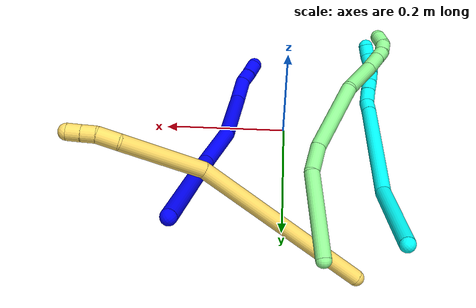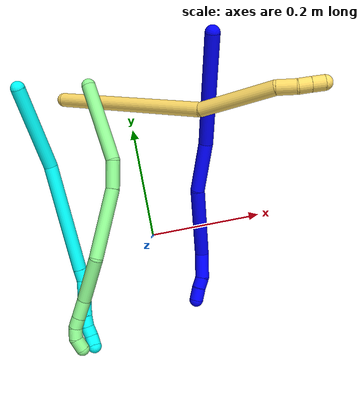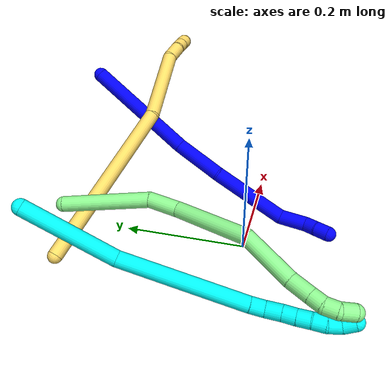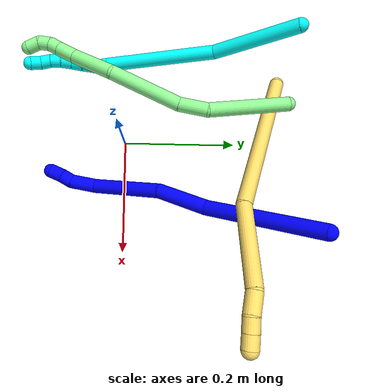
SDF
<sdf version="1.7">
 <world name="default">
  <model name="1">
   <static>0</static>
   <link name="1">
    <collision name="collision-cylinder-e_1_1_4">
     <pose>-0.030157 -0.092125 0.004974 1.51686 -0.315931 -0.299588</pose>
     <geometry><cylinder><radius>0.0125</radius><length>0.194125</length></cylinder></geometry>
     <surface>
      <friction><ode><mu>1.16</mu><mu2>1.16</mu2><slip1>0</slip1><slip2>0</slip2></ode></friction>
      <contact><ode><kp>1e+06</kp><kd>1</kd><max_vel>0</max_vel><min_depth>0.001</min_depth></ode></contact>
     </surface>
    </collision>
    <visual name="visual-cylinder-e_1_1_4">
     <pose>-0.030157 -0.092125 0.004974 1.51686 -0.315931 -0.299588</pose>
     <geometry><cylinder><radius>0.0125</radius><length>0.194125</length></cylinder></geometry>
     <material><ambient>0 0 1 1</ambient></material>
    </visual>
    <collision name="collision-cylinder-e_2_4_5">
     <pose>-0.083019 -0.220854 0.014388 1.45007 -0.551906 -0.49165</pose>
     <geometry><cylinder><radius>0.0125</radius><length>0.086605</length></cylinder></geometry>
     <surface>
      <friction><ode><mu>1.16</mu><mu2>1.16</mu2><slip1>0</slip1><slip2>0</slip2></ode></friction>
      <contact><ode><kp>1e+06</kp><kd>1</kd><max_vel>0</max_vel><min_depth>0.001</min_depth></ode></contact>
     </surface>
    </collision>
    <visual name="visual-cylinder-e_2_4_5">
     <pose>-0.083019 -0.220854 0.014388 1.45007 -0.551906 -0.49165</pose>
     <geometry><cylinder><radius>0.0125</radius><length>0.086605</length></cylinder></geometry>
     <material><ambient>0 0 1 1</ambient></material>
    </visual>
    <collision name="collision-cylinder-e_3_5_6">
     <pose>-0.124885 -0.318672 0.030797 1.37772 -0.298066 -0.24602</pose>
     <geometry><cylinder><radius>0.0125</radius><length>0.130499</length></cylinder></geometry>
     <surface>
      <friction><ode><mu>1.16</mu><mu2>1.16</mu2><slip1>0</slip1><slip2>0</slip2></ode></friction>
      <contact><ode><kp>1e+06</kp><kd>1</kd><max_vel>0</max_vel><min_depth>0.001</min_depth></ode></contact>
     </surface>
    </collision>
    <visual name="visual-cylinder-e_3_5_6">
     <pose>-0.124885 -0.318672 0.030797 1.37772 -0.298066 -0.24602</pose>
     <geometry><cylinder><radius>0.0125</radius><length>0.130499</length></cylinder></geometry>
     <material><ambient>0 0 1 1</ambient></material>
    </visual>
    <collision name="collision-cylinder-e_4_6_7">
     <pose>-0.157364 -0.395648 0.052493 1.01781 -0.623311 -0.355678</pose>
     <geometry><cylinder><radius>0.0125</radius><length>0.045627</length></cylinder></geometry>
     <surface>
      <friction><ode><mu>1.16</mu><mu2>1.16</mu2><slip1>0</slip1><slip2>0</slip2></ode></friction>
      <contact><ode><kp>1e+06</kp><kd>1</kd><max_vel>0</max_vel><min_depth>0.001</min_depth></ode></contact>
     </surface>
    </collision>
    <visual name="visual-cylinder-e_4_6_7">
     <pose>-0.157364 -0.395648 0.052493 1.01781 -0.623311 -0.355678</pose>
     <geometry><cylinder><radius>0.0125</radius><length>0.045627</length></cylinder></geometry>
     <material><ambient>0 0 1 1</ambient></material>
    </visual>
    <collision name="collision-cylinder-e_5_7_8">
     <pose>-0.178786 -0.416891 0.064342 1.20171 -0.943564 -0.672804</pose>
     <geometry><cylinder><radius>0.0125</radius><length>0.020022</length></cylinder></geometry>
     <surface>
      <friction><ode><mu>1.16</mu><mu2>1.16</mu2><slip1>0</slip1><slip2>0</slip2></ode></friction>
      <contact><ode><kp>1e+06</kp><kd>1</kd><max_vel>0</max_vel><min_depth>0.001</min_depth></ode></contact>
     </surface>
    </collision>
    <visual name="visual-cylinder-e_5_7_8">
     <pose>-0.178786 -0.416891 0.064342 1.20171 -0.943564 -0.672804</pose>
     <geometry><cylinder><radius>0.0125</radius><length>0.020022</length></cylinder></geometry>
     <material><ambient>0 0 1 1</ambient></material>
    </visual>
    <collision name="collision-cylinder-e_6_8_2">
     <pose>-0.195271 -0.429743 0.069477 1.18253 -0.810739 -0.561043</pose>
     <geometry><cylinder><radius>0.0125</radius><length>0.023122</length></cylinder></geometry>
     <surface>
      <friction><ode><mu>1.16</mu><mu2>1.16</mu2><slip1>0</slip1><slip2>0</slip2></ode></friction>
      <contact><ode><kp>1e+06</kp><kd>1</kd><max_vel>0</max_vel><min_depth>0.001</min_depth></ode></contact>
     </surface>
    </collision>
    <visual name="visual-cylinder-e_6_8_2">
     <pose>-0.195271 -0.429743 0.069477 1.18253 -0.810739 -0.561043</pose>
     <geometry><cylinder><radius>0.0125</radius><length>0.023122</length></cylinder></geometry>
     <material><ambient>0 0 1 1</ambient></material>
    </visual>
    <collision name="collision-sphere-2">
     <pose>-0.20365 -0.437115 0.072493 0 -0 0</pose>
     <geometry><sphere><radius>0.0125</radius></sphere></geometry>
     <surface>
      <friction><ode><mu>1.16</mu><mu2>1.16</mu2><slip1>0</slip1><slip2>0</slip2></ode></friction>
      <contact><ode><kp>1e+06</kp><kd>1</kd><max_vel>0</max_vel><min_depth>0.001</min_depth></ode></contact>
     </surface>
    </collision>
    <visual name="visual-sphere-2">
     <pose>-0.20365 -0.437115 0.072493 0 -0 0</pose>
     <geometry><sphere><radius>0.0125</radius></sphere></geometry>
     <material><ambient>0 0 1 1</ambient></material>
    </visual>
    <collision name="collision-sphere-4">
     <pose>-0.060315 -0.184249 0.009947 0 -0 0</pose>
     <geometry><sphere><radius>0.0125</radius></sphere></geometry>
     <surface>
      <friction><ode><mu>1.16</mu><mu2>1.16</mu2><slip1>0</slip1><slip2>0</slip2></ode></friction>
      <contact><ode><kp>1e+06</kp><kd>1</kd><max_vel>0</max_vel><min_depth>0.001</min_depth></ode></contact>
     </surface>
    </collision>
    <visual name="visual-sphere-4">
     <pose>-0.060315 -0.184249 0.009947 0 -0 0</pose>
     <geometry><sphere><radius>0.0125</radius></sphere></geometry>
     <material><ambient>0 0 1 1</ambient></material>
    </visual>
    <collision name="collision-sphere-1">
     <geometry><sphere><radius>0.0125</radius></sphere></geometry>
     <surface>
      <friction><ode><mu>1.16</mu><mu2>1.16</mu2><slip1>0</slip1><slip2>0</slip2></ode></friction>
      <contact><ode><kp>1e+06</kp><kd>1</kd><max_vel>0</max_vel><min_depth>0.001</min_depth></ode></contact>
     </surface>
    </collision>
    <visual name="visual-sphere-1">
     <geometry><sphere><radius>0.0125</radius></sphere></geometry>
     <material><ambient>0 0 1 1</ambient></material>
    </visual>
    <collision name="collision-sphere-8">
     <pose>-0.186891 -0.422371 0.066462 0 -0 0</pose>
     <geometry><sphere><radius>0.0125</radius></sphere></geometry>
     <surface>
      <friction><ode><mu>1.16</mu><mu2>1.16</mu2><slip1>0</slip1><slip2>0</slip2></ode></friction>
      <contact><ode><kp>1e+06</kp><kd>1</kd><max_vel>0</max_vel><min_depth>0.001</min_depth></ode></contact>
     </surface>
    </collision>
    <visual name="visual-sphere-8">
     <pose>-0.186891 -0.422371 0.066462 0 -0 0</pose>
     <geometry><sphere><radius>0.0125</radius></sphere></geometry>
     <material><ambient>0 0 1 1</ambient></material>
    </visual>
    <collision name="collision-sphere-5">
     <pose>-0.105723 -0.257459 0.018829 0 -0 0</pose>
     <geometry><sphere><radius>0.0125</radius></sphere></geometry>
     <surface>
      <friction><ode><mu>1.16</mu><mu2>1.16</mu2><slip1>0</slip1><slip2>0</slip2></ode></friction>
      <contact><ode><kp>1e+06</kp><kd>1</kd><max_vel>0</max_vel><min_depth>0.001</min_depth></ode></contact>
     </surface>
    </collision>
    <visual name="visual-sphere-5">
     <pose>-0.105723 -0.257459 0.018829 0 -0 0</pose>
     <geometry><sphere><radius>0.0125</radius></sphere></geometry>
     <material><ambient>0 0 1 1</ambient></material>
    </visual>
    <collision name="collision-sphere-6">
     <pose>-0.144047 -0.379886 0.042764 0 -0 0</pose>
     <geometry><sphere><radius>0.0125</radius></sphere></geometry>
     <surface>
      <friction><ode><mu>1.16</mu><mu2>1.16</mu2><slip1>0</slip1><slip2>0</slip2></ode></friction>
      <contact><ode><kp>1e+06</kp><kd>1</kd><max_vel>0</max_vel><min_depth>0.001</min_depth></ode></contact>
     </surface>
    </collision>
    <visual name="visual-sphere-6">
     <pose>-0.144047 -0.379886 0.042764 0 -0 0</pose>
     <geometry><sphere><radius>0.0125</radius></sphere></geometry>
     <material><ambient>0 0 1 1</ambient></material>
    </visual>
    <collision name="collision-sphere-7">
     <pose>-0.170681 -0.411411 0.062222 0 -0 0</pose>
     <geometry><sphere><radius>0.0125</radius></sphere></geometry>
     <surface>
      <friction><ode><mu>1.16</mu><mu2>1.16</mu2><slip1>0</slip1><slip2>0</slip2></ode></friction>
      <contact><ode><kp>1e+06</kp><kd>1</kd><max_vel>0</max_vel><min_depth>0.001</min_depth></ode></contact>
     </surface>
    </collision>
    <visual name="visual-sphere-7">
     <pose>-0.170681 -0.411411 0.062222 0 -0 0</pose>
     <geometry><sphere><radius>0.0125</radius></sphere></geometry>
     <material><ambient>0 0 1 1</ambient></material>
    </visual>
    <inertial>
     <pose>-0.089232 -0.229866 0.023041 0 -0 0</pose>
     <mass>0.5</mass>
     <inertia>
      <ixx>0.000529</ixx>
      <ixy>0</ixy>
      <ixz>0</ixz>
      <iyy>-0.000113</iyy>
      <iyz>0</iyz>
      <izz>0.001113</izz>
     </inertia>
    </inertial>
   </link>
   <pose>0.156693 0.29882 0.213049 0.932279 0.409623 0.540116</pose>
  </model>
  <model name="3">
   <static>0</static>
   <link name="3">
    <collision name="collision-cylinder-e_1_1_4">
     <pose>-0.013039 -0.074394 0.009941 1.43796 -0.172009 -0.15064</pose>
     <geometry><cylinder><radius>0.0125</radius><length>0.152358</length></cylinder></geometry>
     <surface>
      <friction><ode><mu>1.16</mu><mu2>1.16</mu2><slip1>0</slip1><slip2>0</slip2></ode></friction>
      <contact><ode><kp>1e+06</kp><kd>1</kd><max_vel>0</max_vel><min_depth>0.001</min_depth></ode></contact>
     </surface>
    </collision>
    <visual name="visual-cylinder-e_1_1_4">
     <pose>-0.013039 -0.074394 0.009941 1.43796 -0.172009 -0.15064</pose>
     <geometry><cylinder><radius>0.0125</radius><length>0.152358</length></cylinder></geometry>
     <material><ambient>0.003922 1 0.996078 1</ambient></material>
    </visual>
    <collision name="collision-cylinder-e_2_4_5">
     <pose>-0.017869 -0.247804 0.019027 1.57943 0.082715 0.083431</pose>
     <geometry><cylinder><radius>0.0125</radius><length>0.19872</length></cylinder></geometry>
     <surface>
      <friction><ode><mu>1.16</mu><mu2>1.16</mu2><slip1>0</slip1><slip2>0</slip2></ode></friction>
      <contact><ode><kp>1e+06</kp><kd>1</kd><max_vel>0</max_vel><min_depth>0.001</min_depth></ode></contact>
     </surface>
    </collision>
    <visual name="visual-cylinder-e_2_4_5">
     <pose>-0.017869 -0.247804 0.019027 1.57943 0.082715 0.083431</pose>
     <geometry><cylinder><radius>0.0125</radius><length>0.19872</length></cylinder></geometry>
     <material><ambient>0.003922 1 0.996078 1</ambient></material>
    </visual>
    <collision name="collision-cylinder-e_3_5_6">
     <pose>-0.008881 -0.358292 0.017376 1.64002 0.067639 0.072487</pose>
     <geometry><cylinder><radius>0.0125</radius><length>0.02305</length></cylinder></geometry>
     <surface>
      <friction><ode><mu>1.16</mu><mu2>1.16</mu2><slip1>0</slip1><slip2>0</slip2></ode></friction>
      <contact><ode><kp>1e+06</kp><kd>1</kd><max_vel>0</max_vel><min_depth>0.001</min_depth></ode></contact>
     </surface>
    </collision>
    <visual name="visual-cylinder-e_3_5_6">
     <pose>-0.008881 -0.358292 0.017376 1.64002 0.067639 0.072487</pose>
     <geometry><cylinder><radius>0.0125</radius><length>0.02305</length></cylinder></geometry>
     <material><ambient>0.003922 1 0.996078 1</ambient></material>
    </visual>
    <collision name="collision-cylinder-e_4_6_7">
     <pose>-0.003012 -0.381391 0.015361 1.67531 0.410532 0.454376</pose>
     <geometry><cylinder><radius>0.0125</radius><length>0.025503</length></cylinder></geometry>
     <surface>
      <friction><ode><mu>1.16</mu><mu2>1.16</mu2><slip1>0</slip1><slip2>0</slip2></ode></friction>
      <contact><ode><kp>1e+06</kp><kd>1</kd><max_vel>0</max_vel><min_depth>0.001</min_depth></ode></contact>
     </surface>
    </collision>
    <visual name="visual-cylinder-e_4_6_7">
     <pose>-0.003012 -0.381391 0.015361 1.67531 0.410532 0.454376</pose>
     <geometry><cylinder><radius>0.0125</radius><length>0.025503</length></cylinder></geometry>
     <material><ambient>0.003922 1 0.996078 1</ambient></material>
    </visual>
    <collision name="collision-cylinder-e_5_7_8">
     <pose>0.006246 -0.402176 0.013765 1.61186 0.426942 0.444272</pose>
     <geometry><cylinder><radius>0.0125</radius><length>0.020137</length></cylinder></geometry>
     <surface>
      <friction><ode><mu>1.16</mu><mu2>1.16</mu2><slip1>0</slip1><slip2>0</slip2></ode></friction>
      <contact><ode><kp>1e+06</kp><kd>1</kd><max_vel>0</max_vel><min_depth>0.001</min_depth></ode></contact>
     </surface>
    </collision>
    <visual name="visual-cylinder-e_5_7_8">
     <pose>0.006246 -0.402176 0.013765 1.61186 0.426942 0.444272</pose>
     <geometry><cylinder><radius>0.0125</radius><length>0.020137</length></cylinder></geometry>
     <material><ambient>0.003922 1 0.996078 1</ambient></material>
    </visual>
    <collision name="collision-cylinder-e_6_8_9">
     <pose>0.014511 -0.420523 0.012389 1.67917 0.417127 0.463362</pose>
     <geometry><cylinder><radius>0.0125</radius><length>0.02022</length></cylinder></geometry>
     <surface>
      <friction><ode><mu>1.16</mu><mu2>1.16</mu2><slip1>0</slip1><slip2>0</slip2></ode></friction>
      <contact><ode><kp>1e+06</kp><kd>1</kd><max_vel>0</max_vel><min_depth>0.001</min_depth></ode></contact>
     </surface>
    </collision>
    <visual name="visual-cylinder-e_6_8_9">
     <pose>0.014511 -0.420523 0.012389 1.67917 0.417127 0.463362</pose>
     <geometry><cylinder><radius>0.0125</radius><length>0.02022</length></cylinder></geometry>
     <material><ambient>0.003922 1 0.996078 1</ambient></material>
    </visual>
    <collision name="collision-cylinder-e_7_9_10">
     <pose>0.021239 -0.439334 0.010645 1.64802 0.26618 0.287289</pose>
     <geometry><cylinder><radius>0.0125</radius><length>0.020007</length></cylinder></geometry>
     <surface>
      <friction><ode><mu>1.16</mu><mu2>1.16</mu2><slip1>0</slip1><slip2>0</slip2></ode></friction>
      <contact><ode><kp>1e+06</kp><kd>1</kd><max_vel>0</max_vel><min_depth>0.001</min_depth></ode></contact>
     </surface>
    </collision>
    <visual name="visual-cylinder-e_7_9_10">
     <pose>0.021239 -0.439334 0.010645 1.64802 0.26618 0.287289</pose>
     <geometry><cylinder><radius>0.0125</radius><length>0.020007</length></cylinder></geometry>
     <material><ambient>0.003922 1 0.996078 1</ambient></material>
    </visual>
    <collision name="collision-cylinder-e_8_10_11">
     <pose>0.025179 -0.458449 0.007039 1.86352 0.131274 0.176464</pose>
     <geometry><cylinder><radius>0.0125</radius><length>0.02</length></cylinder></geometry>
     <surface>
      <friction><ode><mu>1.16</mu><mu2>1.16</mu2><slip1>0</slip1><slip2>0</slip2></ode></friction>
      <contact><ode><kp>1e+06</kp><kd>1</kd><max_vel>0</max_vel><min_depth>0.001</min_depth></ode></contact>
     </surface>
    </collision>
    <visual name="visual-cylinder-e_8_10_11">
     <pose>0.025179 -0.458449 0.007039 1.86352 0.131274 0.176464</pose>
     <geometry><cylinder><radius>0.0125</radius><length>0.02</length></cylinder></geometry>
     <material><ambient>0.003922 1 0.996078 1</ambient></material>
    </visual>
    <collision name="collision-cylinder-e_9_11_2">
     <pose>0.030291 -0.475826 -0.000659 2.12118 0.390065 0.678674</pose>
     <geometry><cylinder><radius>0.0125</radius><length>0.020003</length></cylinder></geometry>
     <surface>
      <friction><ode><mu>1.16</mu><mu2>1.16</mu2><slip1>0</slip1><slip2>0</slip2></ode></friction>
      <contact><ode><kp>1e+06</kp><kd>1</kd><max_vel>0</max_vel><min_depth>0.001</min_depth></ode></contact>
     </surface>
    </collision>
    <visual name="visual-cylinder-e_9_11_2">
     <pose>0.030291 -0.475826 -0.000659 2.12118 0.390065 0.678674</pose>
     <geometry><cylinder><radius>0.0125</radius><length>0.020003</length></cylinder></geometry>
     <material><ambient>0.003922 1 0.996078 1</ambient></material>
    </visual>
    <collision name="collision-sphere-2">
     <pose>0.034094 -0.48371 -0.005498 0 -0 0</pose>
     <geometry><sphere><radius>0.0125</radius></sphere></geometry>
     <surface>
      <friction><ode><mu>1.16</mu><mu2>1.16</mu2><slip1>0</slip1><slip2>0</slip2></ode></friction>
      <contact><ode><kp>1e+06</kp><kd>1</kd><max_vel>0</max_vel><min_depth>0.001</min_depth></ode></contact>
     </surface>
    </collision>
    <visual name="visual-sphere-2">
     <pose>0.034094 -0.48371 -0.005498 0 -0 0</pose>
     <geometry><sphere><radius>0.0125</radius></sphere></geometry>
     <material><ambient>0.003922 1 0.996078 1</ambient></material>
    </visual>
    <collision name="collision-sphere-11">
     <pose>0.026488 -0.467942 0.004179 0 -0 0</pose>
     <geometry><sphere><radius>0.0125</radius></sphere></geometry>
     <surface>
      <friction><ode><mu>1.16</mu><mu2>1.16</mu2><slip1>0</slip1><slip2>0</slip2></ode></friction>
      <contact><ode><kp>1e+06</kp><kd>1</kd><max_vel>0</max_vel><min_depth>0.001</min_depth></ode></contact>
     </surface>
    </collision>
    <visual name="visual-sphere-11">
     <pose>0.026488 -0.467942 0.004179 0 -0 0</pose>
     <geometry><sphere><radius>0.0125</radius></sphere></geometry>
     <material><ambient>0.003922 1 0.996078 1</ambient></material>
    </visual>
    <collision name="collision-sphere-10">
     <pose>0.02387 -0.448957 0.0099 0 -0 0</pose>
     <geometry><sphere><radius>0.0125</radius></sphere></geometry>
     <surface>
      <friction><ode><mu>1.16</mu><mu2>1.16</mu2><slip1>0</slip1><slip2>0</slip2></ode></friction>
      <contact><ode><kp>1e+06</kp><kd>1</kd><max_vel>0</max_vel><min_depth>0.001</min_depth></ode></contact>
     </surface>
    </collision>
    <visual name="visual-sphere-10">
     <pose>0.02387 -0.448957 0.0099 0 -0 0</pose>
     <geometry><sphere><radius>0.0125</radius></sphere></geometry>
     <material><ambient>0.003922 1 0.996078 1</ambient></material>
    </visual>
    <collision name="collision-sphere-9">
     <pose>0.018607 -0.429712 0.011389 0 -0 0</pose>
     <geometry><sphere><radius>0.0125</radius></sphere></geometry>
     <surface>
      <friction><ode><mu>1.16</mu><mu2>1.16</mu2><slip1>0</slip1><slip2>0</slip2></ode></friction>
      <contact><ode><kp>1e+06</kp><kd>1</kd><max_vel>0</max_vel><min_depth>0.001</min_depth></ode></contact>
     </surface>
    </collision>
    <visual name="visual-sphere-9">
     <pose>0.018607 -0.429712 0.011389 0 -0 0</pose>
     <geometry><sphere><radius>0.0125</radius></sphere></geometry>
     <material><ambient>0.003922 1 0.996078 1</ambient></material>
    </visual>
    <collision name="collision-sphere-4">
     <pose>-0.026078 -0.148787 0.019882 0 -0 0</pose>
     <geometry><sphere><radius>0.0125</radius></sphere></geometry>
     <surface>
      <friction><ode><mu>1.16</mu><mu2>1.16</mu2><slip1>0</slip1><slip2>0</slip2></ode></friction>
      <contact><ode><kp>1e+06</kp><kd>1</kd><max_vel>0</max_vel><min_depth>0.001</min_depth></ode></contact>
     </surface>
    </collision>
    <visual name="visual-sphere-4">
     <pose>-0.026078 -0.148787 0.019882 0 -0 0</pose>
     <geometry><sphere><radius>0.0125</radius></sphere></geometry>
     <material><ambient>0.003922 1 0.996078 1</ambient></material>
    </visual>
    <collision name="collision-sphere-1">
     <geometry><sphere><radius>0.0125</radius></sphere></geometry>
     <surface>
      <friction><ode><mu>1.16</mu><mu2>1.16</mu2><slip1>0</slip1><slip2>0</slip2></ode></friction>
      <contact><ode><kp>1e+06</kp><kd>1</kd><max_vel>0</max_vel><min_depth>0.001</min_depth></ode></contact>
     </surface>
    </collision>
    <visual name="visual-sphere-1">
     <geometry><sphere><radius>0.0125</radius></sphere></geometry>
     <material><ambient>0.003922 1 0.996078 1</ambient></material>
    </visual>
    <collision name="collision-sphere-8">
     <pose>0.010415 -0.411334 0.013389 0 -0 0</pose>
     <geometry><sphere><radius>0.0125</radius></sphere></geometry>
     <surface>
      <friction><ode><mu>1.16</mu><mu2>1.16</mu2><slip1>0</slip1><slip2>0</slip2></ode></friction>
      <contact><ode><kp>1e+06</kp><kd>1</kd><max_vel>0</max_vel><min_depth>0.001</min_depth></ode></contact>
     </surface>
    </collision>
    <visual name="visual-sphere-8">
     <pose>0.010415 -0.411334 0.013389 0 -0 0</pose>
     <geometry><sphere><radius>0.0125</radius></sphere></geometry>
     <material><ambient>0.003922 1 0.996078 1</ambient></material>
    </visual>
    <collision name="collision-sphere-5">
     <pose>-0.009659 -0.346821 0.018172 0 -0 0</pose>
     <geometry><sphere><radius>0.0125</radius></sphere></geometry>
     <surface>
      <friction><ode><mu>1.16</mu><mu2>1.16</mu2><slip1>0</slip1><slip2>0</slip2></ode></friction>
      <contact><ode><kp>1e+06</kp><kd>1</kd><max_vel>0</max_vel><min_depth>0.001</min_depth></ode></contact>
     </surface>
    </collision>
    <visual name="visual-sphere-5">
     <pose>-0.009659 -0.346821 0.018172 0 -0 0</pose>
     <geometry><sphere><radius>0.0125</radius></sphere></geometry>
     <material><ambient>0.003922 1 0.996078 1</ambient></material>
    </visual>
    <collision name="collision-sphere-6">
     <pose>-0.008102 -0.369763 0.016581 0 -0 0</pose>
     <geometry><sphere><radius>0.0125</radius></sphere></geometry>
     <surface>
      <friction><ode><mu>1.16</mu><mu2>1.16</mu2><slip1>0</slip1><slip2>0</slip2></ode></friction>
      <contact><ode><kp>1e+06</kp><kd>1</kd><max_vel>0</max_vel><min_depth>0.001</min_depth></ode></contact>
     </surface>
    </collision>
    <visual name="visual-sphere-6">
     <pose>-0.008102 -0.369763 0.016581 0 -0 0</pose>
     <geometry><sphere><radius>0.0125</radius></sphere></geometry>
     <material><ambient>0.003922 1 0.996078 1</ambient></material>
    </visual>
    <collision name="collision-sphere-7">
     <pose>0.002077 -0.393019 0.014141 0 -0 0</pose>
     <geometry><sphere><radius>0.0125</radius></sphere></geometry>
     <surface>
      <friction><ode><mu>1.16</mu><mu2>1.16</mu2><slip1>0</slip1><slip2>0</slip2></ode></friction>
      <contact><ode><kp>1e+06</kp><kd>1</kd><max_vel>0</max_vel><min_depth>0.001</min_depth></ode></contact>
     </surface>
    </collision>
    <visual name="visual-sphere-7">
     <pose>0.002077 -0.393019 0.014141 0 -0 0</pose>
     <geometry><sphere><radius>0.0125</radius></sphere></geometry>
     <material><ambient>0.003922 1 0.996078 1</ambient></material>
    </visual>
    <inertial>
     <pose>-0.007731 -0.245285 0.013912 0 -0 0</pose>
     <mass>0.5</mass>
     <inertia>
      <ixx>0.000977</ixx>
      <ixy>0</ixy>
      <ixz>0</ixz>
      <iyy>2.2e-05</iyy>
      <iyz>0</iyz>
      <izz>0.000957</izz>
     </inertia>
    </inertial>
   </link>
   <pose>-0.173306 0.287921 0.140897 2.71087 -0.738052 -2.73921</pose>
  </model>
  <model name="5">
   <static>0</static>
   <link name="5">
    <collision name="collision-cylinder-e_1_1_4">
     <pose>0.104814 0.089388 -0.048406 -2.06711 0.800704 -1.23542</pose>
     <geometry><cylinder><radius>0.0125</radius><length>0.292022</length></cylinder></geometry>
     <surface>
      <friction><ode><mu>1.16</mu><mu2>1.16</mu2><slip1>0</slip1><slip2>0</slip2></ode></friction>
      <contact><ode><kp>1e+06</kp><kd>1</kd><max_vel>0</max_vel><min_depth>0.001</min_depth></ode></contact>
     </surface>
    </collision>
    <visual name="visual-cylinder-e_1_1_4">
     <pose>0.104814 0.089388 -0.048406 -2.06711 0.800704 -1.23542</pose>
     <geometry><cylinder><radius>0.0125</radius><length>0.292022</length></cylinder></geometry>
     <material><ambient>1 0.858824 0.4 1</ambient></material>
    </visual>
    <collision name="collision-cylinder-e_2_4_5">
     <pose>0.247347 0.215521 -0.137531 -2.40744 0.602435 -1.35917</pose>
     <geometry><cylinder><radius>0.0125</radius><length>0.133131</length></cylinder></geometry>
     <surface>
      <friction><ode><mu>1.16</mu><mu2>1.16</mu2><slip1>0</slip1><slip2>0</slip2></ode></friction>
      <contact><ode><kp>1e+06</kp><kd>1</kd><max_vel>0</max_vel><min_depth>0.001</min_depth></ode></contact>
     </surface>
    </collision>
    <visual name="visual-cylinder-e_2_4_5">
     <pose>0.247347 0.215521 -0.137531 -2.40744 0.602435 -1.35917</pose>
     <geometry><cylinder><radius>0.0125</radius><length>0.133131</length></cylinder></geometry>
     <material><ambient>1 0.858824 0.4 1</ambient></material>
    </visual>
    <collision name="collision-cylinder-e_3_5_6">
     <pose>0.298074 0.257724 -0.186584 -2.56187 0.917204 -2.0547</pose>
     <geometry><cylinder><radius>0.0125</radius><length>0.032769</length></cylinder></geometry>
     <surface>
      <friction><ode><mu>1.16</mu><mu2>1.16</mu2><slip1>0</slip1><slip2>0</slip2></ode></friction>
      <contact><ode><kp>1e+06</kp><kd>1</kd><max_vel>0</max_vel><min_depth>0.001</min_depth></ode></contact>
     </surface>
    </collision>
    <visual name="visual-cylinder-e_3_5_6">
     <pose>0.298074 0.257724 -0.186584 -2.56187 0.917204 -2.0547</pose>
     <geometry><cylinder><radius>0.0125</radius><length>0.032769</length></cylinder></geometry>
     <material><ambient>1 0.858824 0.4 1</ambient></material>
    </visual>
    <collision name="collision-cylinder-e_4_6_7">
     <pose>0.31927 0.264344 -0.20157 -2.96859 0.881233 -2.77785</pose>
     <geometry><cylinder><radius>0.0125</radius><length>0.021228</length></cylinder></geometry>
     <surface>
      <friction><ode><mu>1.16</mu><mu2>1.16</mu2><slip1>0</slip1><slip2>0</slip2></ode></friction>
      <contact><ode><kp>1e+06</kp><kd>1</kd><max_vel>0</max_vel><min_depth>0.001</min_depth></ode></contact>
     </surface>
    </collision>
    <visual name="visual-cylinder-e_4_6_7">
     <pose>0.31927 0.264344 -0.20157 -2.96859 0.881233 -2.77785</pose>
     <geometry><cylinder><radius>0.0125</radius><length>0.021228</length></cylinder></geometry>
     <material><ambient>1 0.858824 0.4 1</ambient></material>
    </visual>
    <collision name="collision-cylinder-e_5_7_2">
     <pose>0.335635 0.266631 -0.214592 -2.96679 0.901433 -2.78335</pose>
     <geometry><cylinder><radius>0.0125</radius><length>0.02085</length></cylinder></geometry>
     <surface>
      <friction><ode><mu>1.16</mu><mu2>1.16</mu2><slip1>0</slip1><slip2>0</slip2></ode></friction>
      <contact><ode><kp>1e+06</kp><kd>1</kd><max_vel>0</max_vel><min_depth>0.001</min_depth></ode></contact>
     </surface>
    </collision>
    <visual name="visual-cylinder-e_5_7_2">
     <pose>0.335635 0.266631 -0.214592 -2.96679 0.901433 -2.78335</pose>
     <geometry><cylinder><radius>0.0125</radius><length>0.02085</length></cylinder></geometry>
     <material><ambient>1 0.858824 0.4 1</ambient></material>
    </visual>
    <collision name="collision-sphere-2">
     <pose>0.34381 0.267756 -0.220962 0 -0 0</pose>
     <geometry><sphere><radius>0.0125</radius></sphere></geometry>
     <surface>
      <friction><ode><mu>1.16</mu><mu2>1.16</mu2><slip1>0</slip1><slip2>0</slip2></ode></friction>
      <contact><ode><kp>1e+06</kp><kd>1</kd><max_vel>0</max_vel><min_depth>0.001</min_depth></ode></contact>
     </surface>
    </collision>
    <visual name="visual-sphere-2">
     <pose>0.34381 0.267756 -0.220962 0 -0 0</pose>
     <geometry><sphere><radius>0.0125</radius></sphere></geometry>
     <material><ambient>1 0.858824 0.4 1</ambient></material>
    </visual>
    <collision name="collision-sphere-7">
     <pose>0.327459 0.265506 -0.208222 0 -0 0</pose>
     <geometry><sphere><radius>0.0125</radius></sphere></geometry>
     <surface>
      <friction><ode><mu>1.16</mu><mu2>1.16</mu2><slip1>0</slip1><slip2>0</slip2></ode></friction>
      <contact><ode><kp>1e+06</kp><kd>1</kd><max_vel>0</max_vel><min_depth>0.001</min_depth></ode></contact>
     </surface>
    </collision>
    <visual name="visual-sphere-7">
     <pose>0.327459 0.265506 -0.208222 0 -0 0</pose>
     <geometry><sphere><radius>0.0125</radius></sphere></geometry>
     <material><ambient>1 0.858824 0.4 1</ambient></material>
    </visual>
    <collision name="collision-sphere-6">
     <pose>0.311082 0.263181 -0.194919 0 -0 0</pose>
     <geometry><sphere><radius>0.0125</radius></sphere></geometry>
     <surface>
      <friction><ode><mu>1.16</mu><mu2>1.16</mu2><slip1>0</slip1><slip2>0</slip2></ode></friction>
      <contact><ode><kp>1e+06</kp><kd>1</kd><max_vel>0</max_vel><min_depth>0.001</min_depth></ode></contact>
     </surface>
    </collision>
    <visual name="visual-sphere-6">
     <pose>0.311082 0.263181 -0.194919 0 -0 0</pose>
     <geometry><sphere><radius>0.0125</radius></sphere></geometry>
     <material><ambient>1 0.858824 0.4 1</ambient></material>
    </visual>
    <collision name="collision-sphere-5">
     <pose>0.285066 0.252267 -0.178249 0 -0 0</pose>
     <geometry><sphere><radius>0.0125</radius></sphere></geometry>
     <surface>
      <friction><ode><mu>1.16</mu><mu2>1.16</mu2><slip1>0</slip1><slip2>0</slip2></ode></friction>
      <contact><ode><kp>1e+06</kp><kd>1</kd><max_vel>0</max_vel><min_depth>0.001</min_depth></ode></contact>
     </surface>
    </collision>
    <visual name="visual-sphere-5">
     <pose>0.285066 0.252267 -0.178249 0 -0 0</pose>
     <geometry><sphere><radius>0.0125</radius></sphere></geometry>
     <material><ambient>1 0.858824 0.4 1</ambient></material>
    </visual>
    <collision name="collision-sphere-1">
     <geometry><sphere><radius>0.0125</radius></sphere></geometry>
     <surface>
      <friction><ode><mu>1.16</mu><mu2>1.16</mu2><slip1>0</slip1><slip2>0</slip2></ode></friction>
      <contact><ode><kp>1e+06</kp><kd>1</kd><max_vel>0</max_vel><min_depth>0.001</min_depth></ode></contact>
     </surface>
    </collision>
    <visual name="visual-sphere-1">
     <geometry><sphere><radius>0.0125</radius></sphere></geometry>
     <material><ambient>1 0.858824 0.4 1</ambient></material>
    </visual>
    <collision name="collision-sphere-4">
     <pose>0.209627 0.178776 -0.096813 0 -0 0</pose>
     <geometry><sphere><radius>0.0125</radius></sphere></geometry>
     <surface>
      <friction><ode><mu>1.16</mu><mu2>1.16</mu2><slip1>0</slip1><slip2>0</slip2></ode></friction>
      <contact><ode><kp>1e+06</kp><kd>1</kd><max_vel>0</max_vel><min_depth>0.001</min_depth></ode></contact>
     </surface>
    </collision>
    <visual name="visual-sphere-4">
     <pose>0.209627 0.178776 -0.096813 0 -0 0</pose>
     <geometry><sphere><radius>0.0125</radius></sphere></geometry>
     <material><ambient>1 0.858824 0.4 1</ambient></material>
    </visual>
    <inertial>
     <pose>0.174161 0.148824 -0.094625 0 -0 0</pose>
     <mass>0.5</mass>
     <inertia>
      <ixx>-0.001001</ixx>
      <ixy>0</ixy>
      <ixz>0</ixz>
      <iyy>-0.00055</iyy>
      <iyz>0</iyz>
      <izz>-0.003026</izz>
     </inertia>
    </inertial>
   </link>
   <pose>-0.114847 0.279846 0.012281 1.63394 0.150912 -0.713329</pose>
  </model>
  <model name="13">
   <static>0</static>
   <link name="13">
    <collision name="collision-cylinder-e_1_1_4">
     <pose>-0.052664 -0.048092 -0.005473 1.68411 -0.827538 -0.914338</pose>
     <geometry><cylinder><radius>0.0125</radius><length>0.143056</length></cylinder></geometry>
     <surface>
      <friction><ode><mu>1.16</mu><mu2>1.16</mu2><slip1>0</slip1><slip2>0</slip2></ode></friction>
      <contact><ode><kp>1e+06</kp><kd>1</kd><max_vel>0</max_vel><min_depth>0.001</min_depth></ode></contact>
     </surface>
    </collision>
    <visual name="visual-cylinder-e_1_1_4">
     <pose>-0.052664 -0.048092 -0.005473 1.68411 -0.827538 -0.914338</pose>
     <geometry><cylinder><radius>0.0125</radius><length>0.143056</length></cylinder></geometry>
     <material><ambient>0.564706 0.984314 0.572549 1</ambient></material>
    </visual>
    <collision name="collision-cylinder-e_2_4_5">
     <pose>-0.12622 -0.108447 -0.004564 1.09094 -0.986262 -0.630547</pose>
     <geometry><cylinder><radius>0.0125</radius><length>0.050104</length></cylinder></geometry>
     <surface>
      <friction><ode><mu>1.16</mu><mu2>1.16</mu2><slip1>0</slip1><slip2>0</slip2></ode></friction>
      <contact><ode><kp>1e+06</kp><kd>1</kd><max_vel>0</max_vel><min_depth>0.001</min_depth></ode></contact>
     </surface>
    </collision>
    <visual name="visual-cylinder-e_2_4_5">
     <pose>-0.12622 -0.108447 -0.004564 1.09094 -0.986262 -0.630547</pose>
     <geometry><cylinder><radius>0.0125</radius><length>0.050104</length></cylinder></geometry>
     <material><ambient>0.564706 0.984314 0.572549 1</ambient></material>
    </visual>
    <collision name="collision-cylinder-e_3_5_6">
     <pose>-0.190834 -0.155094 0.030308 0.878869 -0.774847 -0.379033</pose>
     <geometry><cylinder><radius>0.0125</radius><length>0.124989</length></cylinder></geometry>
     <surface>
      <friction><ode><mu>1.16</mu><mu2>1.16</mu2><slip1>0</slip1><slip2>0</slip2></ode></friction>
      <contact><ode><kp>1e+06</kp><kd>1</kd><max_vel>0</max_vel><min_depth>0.001</min_depth></ode></contact>
     </surface>
    </collision>
    <visual name="visual-cylinder-e_3_5_6">
     <pose>-0.190834 -0.155094 0.030308 0.878869 -0.774847 -0.379033</pose>
     <geometry><cylinder><radius>0.0125</radius><length>0.124989</length></cylinder></geometry>
     <material><ambient>0.564706 0.984314 0.572549 1</ambient></material>
    </visual>
    <collision name="collision-cylinder-e_4_6_7">
     <pose>-0.270762 -0.195139 0.079658 0.265013 -1.03259 -0.151035</pose>
     <geometry><cylinder><radius>0.0125</radius><length>0.084336</length></cylinder></geometry>
     <surface>
      <friction><ode><mu>1.16</mu><mu2>1.16</mu2><slip1>0</slip1><slip2>0</slip2></ode></friction>
      <contact><ode><kp>1e+06</kp><kd>1</kd><max_vel>0</max_vel><min_depth>0.001</min_depth></ode></contact>
     </surface>
    </collision>
    <visual name="visual-cylinder-e_4_6_7">
     <pose>-0.270762 -0.195139 0.079658 0.265013 -1.03259 -0.151035</pose>
     <geometry><cylinder><radius>0.0125</radius><length>0.084336</length></cylinder></geometry>
     <material><ambient>0.564706 0.984314 0.572549 1</ambient></material>
    </visual>
    <collision name="collision-cylinder-e_5_7_8">
     <pose>-0.320614 -0.206073 0.109526 0.529554 -0.917821 -0.266354</pose>
     <geometry><cylinder><radius>0.0125</radius><length>0.034357</length></cylinder></geometry>
     <surface>
      <friction><ode><mu>1.16</mu><mu2>1.16</mu2><slip1>0</slip1><slip2>0</slip2></ode></friction>
      <contact><ode><kp>1e+06</kp><kd>1</kd><max_vel>0</max_vel><min_depth>0.001</min_depth></ode></contact>
     </surface>
    </collision>
    <visual name="visual-cylinder-e_5_7_8">
     <pose>-0.320614 -0.206073 0.109526 0.529554 -0.917821 -0.266354</pose>
     <geometry><cylinder><radius>0.0125</radius><length>0.034357</length></cylinder></geometry>
     <material><ambient>0.564706 0.984314 0.572549 1</ambient></material>
    </visual>
    <collision name="collision-cylinder-e_6_8_9">
     <pose>-0.342059 -0.214683 0.123915 0.555116 -0.888917 -0.269725</pose>
     <geometry><cylinder><radius>0.0125</radius><length>0.020095</length></cylinder></geometry>
     <surface>
      <friction><ode><mu>1.16</mu><mu2>1.16</mu2><slip1>0</slip1><slip2>0</slip2></ode></friction>
      <contact><ode><kp>1e+06</kp><kd>1</kd><max_vel>0</max_vel><min_depth>0.001</min_depth></ode></contact>
     </surface>
    </collision>
    <visual name="visual-cylinder-e_6_8_9">
     <pose>-0.342059 -0.214683 0.123915 0.555116 -0.888917 -0.269725</pose>
     <geometry><cylinder><radius>0.0125</radius><length>0.020095</length></cylinder></geometry>
     <material><ambient>0.564706 0.984314 0.572549 1</ambient></material>
    </visual>
    <collision name="collision-cylinder-e_7_9_10">
     <pose>-0.358521 -0.222752 0.131448 1.14409 -1.03032 -0.699098</pose>
     <geometry><cylinder><radius>0.0125</radius><length>0.020203</length></cylinder></geometry>
     <surface>
      <friction><ode><mu>1.16</mu><mu2>1.16</mu2><slip1>0</slip1><slip2>0</slip2></ode></friction>
      <contact><ode><kp>1e+06</kp><kd>1</kd><max_vel>0</max_vel><min_depth>0.001</min_depth></ode></contact>
     </surface>
    </collision>
    <visual name="visual-cylinder-e_7_9_10">
     <pose>-0.358521 -0.222752 0.131448 1.14409 -1.03032 -0.699098</pose>
     <geometry><cylinder><radius>0.0125</radius><length>0.020203</length></cylinder></geometry>
     <material><ambient>0.564706 0.984314 0.572549 1</ambient></material>
    </visual>
    <collision name="collision-cylinder-e_8_10_2">
     <pose>-0.377363 -0.231528 0.130335 2.24982 -1.0988 -1.81591</pose>
     <geometry><cylinder><radius>0.0125</radius><length>0.022861</length></cylinder></geometry>
     <surface>
      <friction><ode><mu>1.16</mu><mu2>1.16</mu2><slip1>0</slip1><slip2>0</slip2></ode></friction>
      <contact><ode><kp>1e+06</kp><kd>1</kd><max_vel>0</max_vel><min_depth>0.001</min_depth></ode></contact>
     </surface>
    </collision>
    <visual name="visual-cylinder-e_8_10_2">
     <pose>-0.377363 -0.231528 0.130335 2.24982 -1.0988 -1.81591</pose>
     <geometry><cylinder><radius>0.0125</radius><length>0.022861</length></cylinder></geometry>
     <material><ambient>0.564706 0.984314 0.572549 1</ambient></material>
    </visual>
    <collision name="collision-sphere-2">
     <pose>-0.387544 -0.235572 0.127071 0 -0 0</pose>
     <geometry><sphere><radius>0.0125</radius></sphere></geometry>
     <surface>
      <friction><ode><mu>1.16</mu><mu2>1.16</mu2><slip1>0</slip1><slip2>0</slip2></ode></friction>
      <contact><ode><kp>1e+06</kp><kd>1</kd><max_vel>0</max_vel><min_depth>0.001</min_depth></ode></contact>
     </surface>
    </collision>
    <visual name="visual-sphere-2">
     <pose>-0.387544 -0.235572 0.127071 0 -0 0</pose>
     <geometry><sphere><radius>0.0125</radius></sphere></geometry>
     <material><ambient>0.564706 0.984314 0.572549 1</ambient></material>
    </visual>
    <collision name="collision-sphere-10">
     <pose>-0.367183 -0.227483 0.133599 0 -0 0</pose>
     <geometry><sphere><radius>0.0125</radius></sphere></geometry>
     <surface>
      <friction><ode><mu>1.16</mu><mu2>1.16</mu2><slip1>0</slip1><slip2>0</slip2></ode></friction>
      <contact><ode><kp>1e+06</kp><kd>1</kd><max_vel>0</max_vel><min_depth>0.001</min_depth></ode></contact>
     </surface>
    </collision>
    <visual name="visual-sphere-10">
     <pose>-0.367183 -0.227483 0.133599 0 -0 0</pose>
     <geometry><sphere><radius>0.0125</radius></sphere></geometry>
     <material><ambient>0.564706 0.984314 0.572549 1</ambient></material>
    </visual>
    <collision name="collision-sphere-9">
     <pose>-0.349859 -0.21802 0.129296 0 -0 0</pose>
     <geometry><sphere><radius>0.0125</radius></sphere></geometry>
     <surface>
      <friction><ode><mu>1.16</mu><mu2>1.16</mu2><slip1>0</slip1><slip2>0</slip2></ode></friction>
      <contact><ode><kp>1e+06</kp><kd>1</kd><max_vel>0</max_vel><min_depth>0.001</min_depth></ode></contact>
     </surface>
    </collision>
    <visual name="visual-sphere-9">
     <pose>-0.349859 -0.21802 0.129296 0 -0 0</pose>
     <geometry><sphere><radius>0.0125</radius></sphere></geometry>
     <material><ambient>0.564706 0.984314 0.572549 1</ambient></material>
    </visual>
    <collision name="collision-sphere-4">
     <pose>-0.105328 -0.096184 -0.010946 0 -0 0</pose>
     <geometry><sphere><radius>0.0125</radius></sphere></geometry>
     <surface>
      <friction><ode><mu>1.16</mu><mu2>1.16</mu2><slip1>0</slip1><slip2>0</slip2></ode></friction>
      <contact><ode><kp>1e+06</kp><kd>1</kd><max_vel>0</max_vel><min_depth>0.001</min_depth></ode></contact>
     </surface>
    </collision>
    <visual name="visual-sphere-4">
     <pose>-0.105328 -0.096184 -0.010946 0 -0 0</pose>
     <geometry><sphere><radius>0.0125</radius></sphere></geometry>
     <material><ambient>0.564706 0.984314 0.572549 1</ambient></material>
    </visual>
    <collision name="collision-sphere-1">
     <geometry><sphere><radius>0.0125</radius></sphere></geometry>
     <surface>
      <friction><ode><mu>1.16</mu><mu2>1.16</mu2><slip1>0</slip1><slip2>0</slip2></ode></friction>
      <contact><ode><kp>1e+06</kp><kd>1</kd><max_vel>0</max_vel><min_depth>0.001</min_depth></ode></contact>
     </surface>
    </collision>
    <visual name="visual-sphere-1">
     <geometry><sphere><radius>0.0125</radius></sphere></geometry>
     <material><ambient>0.564706 0.984314 0.572549 1</ambient></material>
    </visual>
    <collision name="collision-sphere-8">
     <pose>-0.334258 -0.211345 0.118533 0 -0 0</pose>
     <geometry><sphere><radius>0.0125</radius></sphere></geometry>
     <surface>
      <friction><ode><mu>1.16</mu><mu2>1.16</mu2><slip1>0</slip1><slip2>0</slip2></ode></friction>
      <contact><ode><kp>1e+06</kp><kd>1</kd><max_vel>0</max_vel><min_depth>0.001</min_depth></ode></contact>
     </surface>
    </collision>
    <visual name="visual-sphere-8">
     <pose>-0.334258 -0.211345 0.118533 0 -0 0</pose>
     <geometry><sphere><radius>0.0125</radius></sphere></geometry>
     <material><ambient>0.564706 0.984314 0.572549 1</ambient></material>
    </visual>
    <collision name="collision-sphere-5">
     <pose>-0.147113 -0.120709 0.001818 0 -0 0</pose>
     <geometry><sphere><radius>0.0125</radius></sphere></geometry>
     <surface>
      <friction><ode><mu>1.16</mu><mu2>1.16</mu2><slip1>0</slip1><slip2>0</slip2></ode></friction>
      <contact><ode><kp>1e+06</kp><kd>1</kd><max_vel>0</max_vel><min_depth>0.001</min_depth></ode></contact>
     </surface>
    </collision>
    <visual name="visual-sphere-5">
     <pose>-0.147113 -0.120709 0.001818 0 -0 0</pose>
     <geometry><sphere><radius>0.0125</radius></sphere></geometry>
     <material><ambient>0.564706 0.984314 0.572549 1</ambient></material>
    </visual>
    <collision name="collision-sphere-6">
     <pose>-0.234556 -0.189478 0.058798 0 -0 0</pose>
     <geometry><sphere><radius>0.0125</radius></sphere></geometry>
     <surface>
      <friction><ode><mu>1.16</mu><mu2>1.16</mu2><slip1>0</slip1><slip2>0</slip2></ode></friction>
      <contact><ode><kp>1e+06</kp><kd>1</kd><max_vel>0</max_vel><min_depth>0.001</min_depth></ode></contact>
     </surface>
    </collision>
    <visual name="visual-sphere-6">
     <pose>-0.234556 -0.189478 0.058798 0 -0 0</pose>
     <geometry><sphere><radius>0.0125</radius></sphere></geometry>
     <material><ambient>0.564706 0.984314 0.572549 1</ambient></material>
    </visual>
    <collision name="collision-sphere-7">
     <pose>-0.306969 -0.200801 0.100519 0 -0 0</pose>
     <geometry><sphere><radius>0.0125</radius></sphere></geometry>
     <surface>
      <friction><ode><mu>1.16</mu><mu2>1.16</mu2><slip1>0</slip1><slip2>0</slip2></ode></friction>
      <contact><ode><kp>1e+06</kp><kd>1</kd><max_vel>0</max_vel><min_depth>0.001</min_depth></ode></contact>
     </surface>
    </collision>
    <visual name="visual-sphere-7">
     <pose>-0.306969 -0.200801 0.100519 0 -0 0</pose>
     <geometry><sphere><radius>0.0125</radius></sphere></geometry>
     <material><ambient>0.564706 0.984314 0.572549 1</ambient></material>
    </visual>
    <inertial>
     <pose>-0.188608 -0.138686 0.042766 0 -0 0</pose>
     <mass>0.5</mass>
     <inertia>
      <ixx>3.2e-05</ixx>
      <ixy>0</ixy>
      <ixz>0</ixz>
      <iyy>0.000124</iyy>
      <iyz>0</iyz>
      <izz>0.000651</izz>
     </inertia>
    </inertial>
   </link>
   <pose>-0.060785 0.283948 0.074472 -1.58111 -0.596259 1.63065</pose>
  </model>
 </world>
</sdf>
